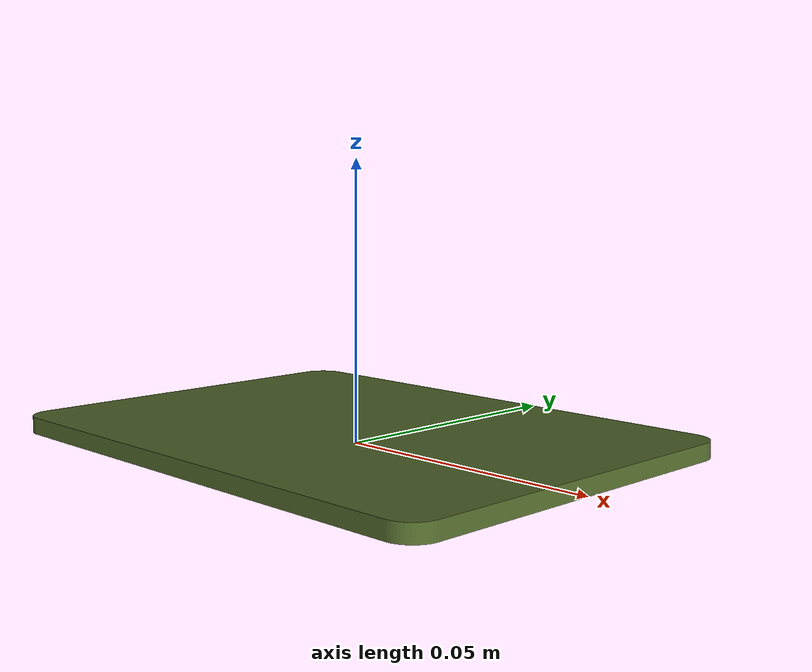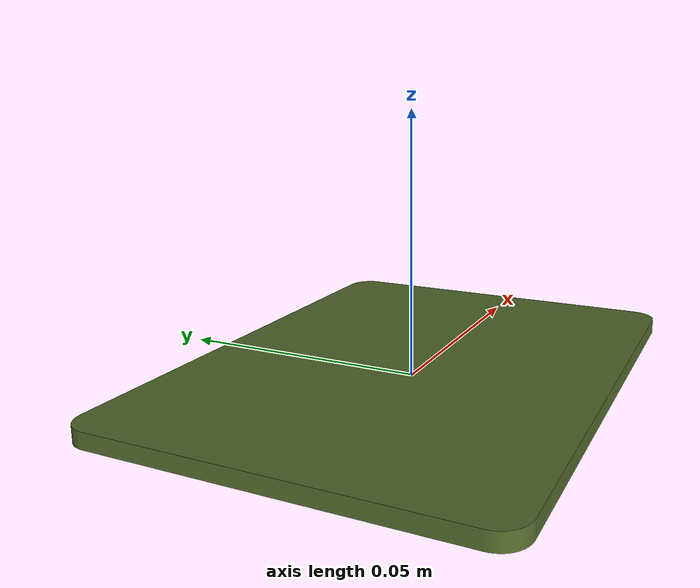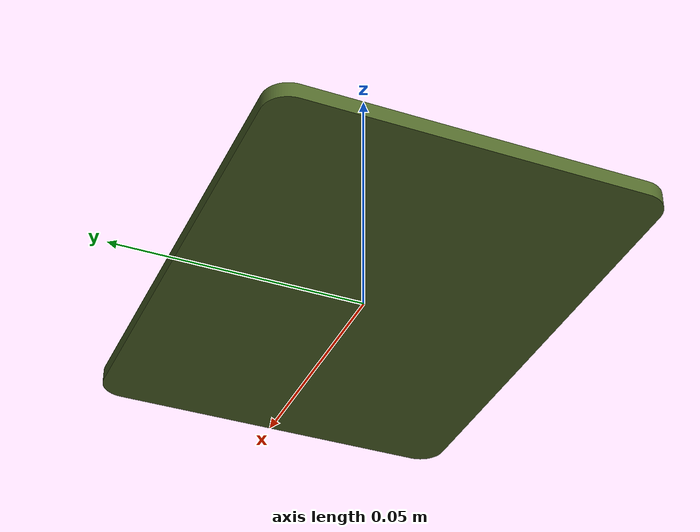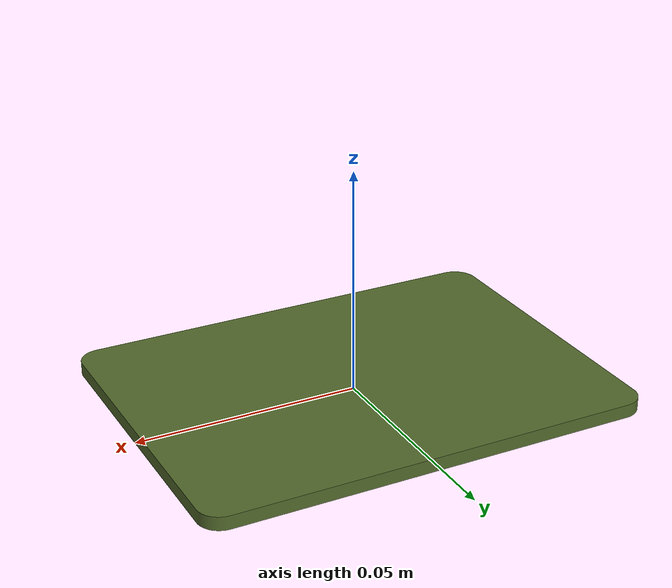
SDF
<?xml version='1.0'?>
<sdf version="1.4">
<model name="sealmat_model">
  <pose>0 0 0 0 0 0</pose>
    <link name="link">
      <inertial>
        <mass>0.010</mass>
        <inertia>
          <ixx>0.0</ixx>
          <ixy>0.0</ixy>
          <ixz>0.0</ixz>
          <iyy>0.0</iyy>
          <iyz>0.0</iyz>
          <izz>0.0</izz>
        </inertia>
      </inertial>
      <collision name="collision">
        <geometry>
          <mesh>
            <uri>model://sealmat_model/sealmat.dae</uri>
          </mesh>
        </geometry>
      </collision>
      <visual name="visual">
        <geometry>
          <mesh>
            <uri>model://sealmat_model/sealmat.dae</uri>
          </mesh>
        </geometry>
      </visual>
    </link>
  </model>
</sdf>
